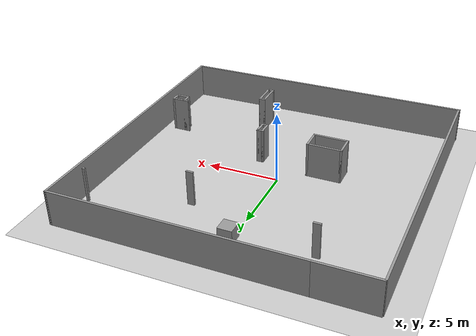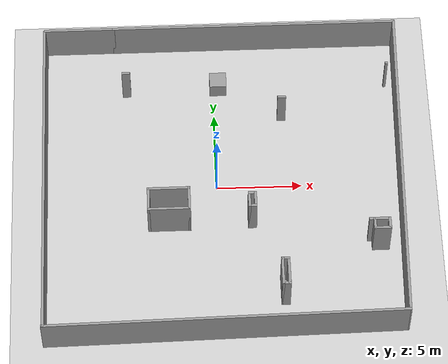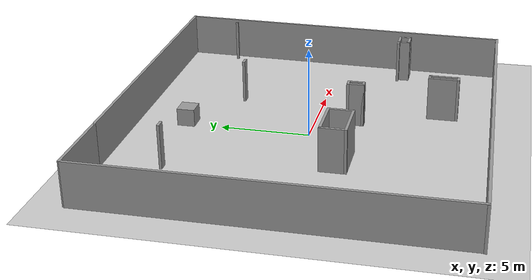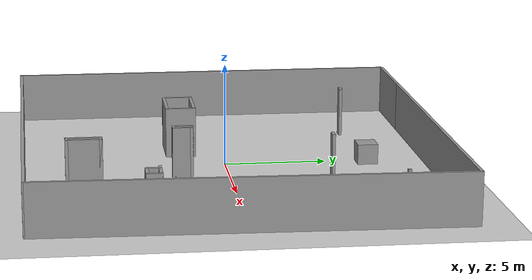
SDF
<sdf version="1.7">
 <world name="default">
  <light name="sun" type="directional">
   <pose>0 0 10 0 -0 0</pose>
   <diffuse>0.8 0.8 0.8 1</diffuse>
   <specular>0.2 0.2 0.2 1</specular>
   <attenuation>
    <range>1000</range>
    <constant>0.9</constant>
    <linear>0.01</linear>
    <quadratic>0.001</quadratic>
   </attenuation>
   <direction>-0.5 0.1 -0.9</direction>
   <spot><inner_angle>0</inner_angle><outer_angle>0</outer_angle><falloff>0</falloff></spot>
  </light>
  <model name="ground_plane">
   <static>1</static>
   <link name="link">
    <collision name="collision">
     <geometry><plane><normal>0 0 1</normal><size>100 100</size></plane></geometry>
     <surface>
      <contact><collide_bitmask>65535</collide_bitmask></contact>
      <friction><ode><mu>100</mu><mu2>50</mu2></ode></friction>
     </surface>
    </collision>
    <visual name="visual">
     <cast_shadows>0</cast_shadows>
     <geometry><plane><normal>0 0 1</normal><size>100 100</size></plane></geometry>
     <material>
      <script><uri>file://media/materials/scripts/gazebo.material</uri><name>Gazebo/Grey</name></script>
     </material>
    </visual>
   </link>
  </model>
  <gravity>0 0 -9.8</gravity>
  <magnetic_field>6e-06 2.3e-05 -4.2e-05</magnetic_field>
  <atmosphere type="adiabatic"/>
  <physics type="ode">
   <max_step_size>0.001</max_step_size>
   <real_time_factor>1</real_time_factor>
   <real_time_update_rate>1000</real_time_update_rate>
  </physics>
  <scene><ambient>0.4 0.4 0.4 1</ambient><background>0.7 0.7 0.7 1</background><shadows>1</shadows></scene>
  <spherical_coordinates>
   <surface_model>EARTH_WGS84</surface_model>
   <latitude_deg>0</latitude_deg>
   <longitude_deg>0</longitude_deg>
   <elevation>0</elevation>
   <heading_deg>0</heading_deg>
  </spherical_coordinates>
  <model name="Untitled">
   <pose>0.4511 -0.062671 0 0 -0 0</pose>
   <link name="Wall_10">
    <collision name="Wall_10_Collision">
     <geometry><box><size>19.7734 0.15 2.5</size></box></geometry>
     <pose>0 0 1.25 0 -0 0</pose>
    </collision>
    <visual name="Wall_10_Visual">
     <pose>0 0 1.25 0 -0 0</pose>
     <geometry><box><size>19.7734 0.15 2.5</size></box></geometry>
     <material>
      <script><uri>file://media/materials/scripts/gazebo.material</uri><name>Gazebo/Grey</name></script>
      <ambient>1 1 1 1</ambient>
     </material>
     <meta><layer>0</layer></meta>
    </visual>
    <pose>10.3034 0.181798 0 0 -0 -1.59534</pose>
   </link>
   <link name="Wall_11">
    <collision name="Wall_11_Collision">
     <geometry><box><size>20.7605 0.15 2.5</size></box></geometry>
     <pose>0 0 1.25 0 -0 0</pose>
    </collision>
    <visual name="Wall_11_Visual">
     <pose>0 0 1.25 0 -0 0</pose>
     <geometry><box><size>20.7605 0.15 2.5</size></box></geometry>
     <material>
      <script><uri>file://media/materials/scripts/gazebo.material</uri><name>Gazebo/Grey</name></script>
      <ambient>1 1 1 1</ambient>
     </material>
     <meta><layer>0</layer></meta>
    </visual>
    <pose>-0.241012 -9.80901 0 0 -0 -3.12393</pose>
   </link>
   <link name="Wall_12">
    <collision name="Wall_12_Collision">
     <geometry><box><size>20 0.15 2.5</size></box></geometry>
     <pose>0 0 1.25 0 -0 0</pose>
    </collision>
    <visual name="Wall_12_Visual">
     <pose>0 0 1.25 0 -0 0</pose>
     <geometry><box><size>20 0.15 2.5</size></box></geometry>
     <material>
      <script><uri>file://media/materials/scripts/gazebo.material</uri><name>Gazebo/Grey</name></script>
      <ambient>1 1 1 1</ambient>
     </material>
     <meta><layer>0</layer></meta>
    </visual>
    <pose>-10.5042 -0.025603 0 0 -0 1.5708</pose>
   </link>
   <link name="Wall_15">
    <collision name="Wall_15_Collision">
     <geometry><box><size>4.25 0.15 2.5</size></box></geometry>
     <pose>0 0 1.25 0 -0 0</pose>
    </collision>
    <visual name="Wall_15_Visual">
     <pose>0 0 1.25 0 -0 0</pose>
     <geometry><box><size>4.25 0.15 2.5</size></box></geometry>
     <material>
      <script><uri>file://media/materials/scripts/gazebo.material</uri><name>Gazebo/Grey</name></script>
      <ambient>1 1 1 1</ambient>
     </material>
     <meta><layer>0</layer></meta>
    </visual>
    <pose>-8.40936 9.99055 0 0 -0 3.14159</pose>
   </link>
   <link name="Wall_9">
    <collision name="Wall_9_Collision">
     <geometry><box><size>17 0.15 2.5</size></box></geometry>
     <pose>0 0 1.25 0 -0 0</pose>
    </collision>
    <visual name="Wall_9_Visual">
     <pose>0 0 1.25 0 -0 0</pose>
     <geometry><box><size>17 0.15 2.5</size></box></geometry>
     <material>
      <script><uri>file://media/materials/scripts/gazebo.material</uri><name>Gazebo/Grey</name></script>
      <ambient>1 1 1 1</ambient>
     </material>
     <meta><layer>0</layer></meta>
    </visual>
    <pose>2.06564 9.99055 0 0 -0 0</pose>
   </link>
   <static>1</static>
  </model>
  <model name="unit_box_1">
   <link name="link">
    <inertial>
     <mass>100</mass>
     <inertia><ixx>16.6667</ixx><ixy>0</ixy><ixz>0</ixz><iyy>16.6667</iyy><iyz>0</iyz><izz>16.6667</izz></inertia>
    </inertial>
    <visual name="visual">
     <geometry><box><size>1 1 1</size></box></geometry>
     <material>
      <script><name>Gazebo/Grey</name><uri>file://media/materials/scripts/gazebo.material</uri></script>
      <shader type="pixel"><normal_map>__default__</normal_map></shader>
     </material>
    </visual>
    <collision name="collision">
     <geometry><box><size>1 1 1</size></box></geometry>
     <surface>
      <friction>
       <ode><mu>1</mu><mu2>1</mu2><fdir1>0 0 0</fdir1><slip1>0</slip1><slip2>0</slip2></ode>
       <torsional>
        <coefficient>1</coefficient>
        <patch_radius>0</patch_radius>
        <surface_radius>0</surface_radius>
        <use_patch_radius>1</use_patch_radius>
        <ode><slip>0</slip></ode>
       </torsional>
      </friction>
      <bounce><restitution_coefficient>0</restitution_coefficient><threshold>1e+06</threshold></bounce>
      <contact>
       <collide_without_contact>0</collide_without_contact>
       <collide_without_contact_bitmask>1</collide_without_contact_bitmask>
       <collide_bitmask>1</collide_bitmask>
       <ode>
        <soft_cfm>0</soft_cfm>
        <soft_erp>0.2</soft_erp>
        <kp>1e+13</kp>
        <kd>1</kd>
        <max_vel>0.01</max_vel>
        <min_depth>0</min_depth>
       </ode>
       <bullet>
        <split_impulse>1</split_impulse>
        <split_impulse_penetration_threshold>-0.01</split_impulse_penetration_threshold>
        <soft_cfm>0</soft_cfm>
        <soft_erp>0.2</soft_erp>
        <kp>1e+13</kp>
        <kd>1</kd>
       </bullet>
      </contact>
     </surface>
    </collision>
   </link>
   <static>0</static>
   <pose>0.28615 7.03049 0.5 0 -0 0</pose>
  </model>
  <model name="Untitled_0">
   <link name="Wall_0">
    <pose>-6.00944 -2.13206 0 0 -0 0</pose>
    <visual name="Wall_0_Visual">
     <pose>0 0 1.25 0 -0 0</pose>
     <geometry><box><size>2.5 0.15 2.5</size></box></geometry>
     <material>
      <script><uri>file://media/materials/scripts/gazebo.material</uri><name>Gazebo/Grey</name></script>
      <ambient>1 1 1 1</ambient>
      <shader type="pixel"/>
     </material>
     <meta><layer>0</layer></meta>
    </visual>
    <collision name="Wall_0_Collision">
     <pose>0 0 1.25 0 -0 0</pose>
     <geometry><box><size>2.5 0.15 2.5</size></box></geometry>
     <surface>
      <friction>
       <ode><mu>1</mu><mu2>1</mu2><fdir1>0 0 0</fdir1><slip1>0</slip1><slip2>0</slip2></ode>
       <torsional>
        <coefficient>1</coefficient>
        <patch_radius>0</patch_radius>
        <surface_radius>0</surface_radius>
        <use_patch_radius>1</use_patch_radius>
        <ode><slip>0</slip></ode>
       </torsional>
      </friction>
      <bounce><restitution_coefficient>0</restitution_coefficient><threshold>1e+06</threshold></bounce>
      <contact>
       <collide_without_contact>0</collide_without_contact>
       <collide_without_contact_bitmask>1</collide_without_contact_bitmask>
       <collide_bitmask>1</collide_bitmask>
       <ode>
        <soft_cfm>0</soft_cfm>
        <soft_erp>0.2</soft_erp>
        <kp>1e+13</kp>
        <kd>1</kd>
        <max_vel>0.01</max_vel>
        <min_depth>0</min_depth>
       </ode>
       <bullet>
        <split_impulse>1</split_impulse>
        <split_impulse_penetration_threshold>-0.01</split_impulse_penetration_threshold>
        <soft_cfm>0</soft_cfm>
        <soft_erp>0.2</soft_erp>
        <kp>1e+13</kp>
        <kd>1</kd>
       </bullet>
      </contact>
     </surface>
    </collision>
   </link>
   <link name="Wall_1">
    <pose>-4.83444 -2.80706 0 0 0 -1.5708</pose>
    <visual name="Wall_1_Visual">
     <pose>0 0 1.25 0 -0 0</pose>
     <geometry><box><size>1.5 0.15 2.5</size></box></geometry>
     <material>
      <script><uri>file://media/materials/scripts/gazebo.material</uri><name>Gazebo/Grey</name></script>
      <ambient>1 1 1 1</ambient>
      <shader type="pixel"/>
     </material>
     <meta><layer>0</layer></meta>
    </visual>
    <collision name="Wall_1_Collision">
     <pose>0 0 1.25 0 -0 0</pose>
     <geometry><box><size>1.5 0.15 2.5</size></box></geometry>
     <surface>
      <friction>
       <ode><mu>1</mu><mu2>1</mu2><fdir1>0 0 0</fdir1><slip1>0</slip1><slip2>0</slip2></ode>
       <torsional>
        <coefficient>1</coefficient>
        <patch_radius>0</patch_radius>
        <surface_radius>0</surface_radius>
        <use_patch_radius>1</use_patch_radius>
        <ode><slip>0</slip></ode>
       </torsional>
      </friction>
      <bounce><restitution_coefficient>0</restitution_coefficient><threshold>1e+06</threshold></bounce>
      <contact>
       <collide_without_contact>0</collide_without_contact>
       <collide_without_contact_bitmask>1</collide_without_contact_bitmask>
       <collide_bitmask>1</collide_bitmask>
       <ode>
        <soft_cfm>0</soft_cfm>
        <soft_erp>0.2</soft_erp>
        <kp>1e+13</kp>
        <kd>1</kd>
        <max_vel>0.01</max_vel>
        <min_depth>0</min_depth>
       </ode>
       <bullet>
        <split_impulse>1</split_impulse>
        <split_impulse_penetration_threshold>-0.01</split_impulse_penetration_threshold>
        <soft_cfm>0</soft_cfm>
        <soft_erp>0.2</soft_erp>
        <kp>1e+13</kp>
        <kd>1</kd>
       </bullet>
      </contact>
     </surface>
    </collision>
   </link>
   <link name="Wall_12">
    <pose>0.339457 -7.76774 0 0 -0 1.5708</pose>
    <visual name="Wall_12_Visual">
     <pose>0 0 1.25 0 -0 0</pose>
     <geometry><box><size>1.75 0.15 2.5</size></box></geometry>
     <material>
      <script><uri>file://media/materials/scripts/gazebo.material</uri><name>Gazebo/Grey</name></script>
      <ambient>1 1 1 1</ambient>
      <shader type="pixel"/>
     </material>
     <meta><layer>0</layer></meta>
    </visual>
    <collision name="Wall_12_Collision">
     <pose>0 0 1.25 0 -0 0</pose>
     <geometry><box><size>1.75 0.15 2.5</size></box></geometry>
     <surface>
      <friction>
       <ode><mu>1</mu><mu2>1</mu2><fdir1>0 0 0</fdir1><slip1>0</slip1><slip2>0</slip2></ode>
       <torsional>
        <coefficient>1</coefficient>
        <patch_radius>0</patch_radius>
        <surface_radius>0</surface_radius>
        <use_patch_radius>1</use_patch_radius>
        <ode><slip>0</slip></ode>
       </torsional>
      </friction>
      <bounce><restitution_coefficient>0</restitution_coefficient><threshold>1e+06</threshold></bounce>
      <contact>
       <collide_without_contact>0</collide_without_contact>
       <collide_without_contact_bitmask>1</collide_without_contact_bitmask>
       <collide_bitmask>1</collide_bitmask>
       <ode>
        <soft_cfm>0</soft_cfm>
        <soft_erp>0.2</soft_erp>
        <kp>1e+13</kp>
        <kd>1</kd>
        <max_vel>0.01</max_vel>
        <min_depth>0</min_depth>
       </ode>
       <bullet>
        <split_impulse>1</split_impulse>
        <split_impulse_penetration_threshold>-0.01</split_impulse_penetration_threshold>
        <soft_cfm>0</soft_cfm>
        <soft_erp>0.2</soft_erp>
        <kp>1e+13</kp>
        <kd>1</kd>
       </bullet>
      </contact>
     </surface>
    </collision>
   </link>
   <link name="Wall_13">
    <pose>0.514457 -6.96774 0 0 -0 0</pose>
    <visual name="Wall_13_Visual">
     <pose>0 0 1.25 0 -0 0</pose>
     <geometry><box><size>0.5 0.15 2.5</size></box></geometry>
     <material>
      <script><uri>file://media/materials/scripts/gazebo.material</uri><name>Gazebo/Grey</name></script>
      <ambient>1 1 1 1</ambient>
      <shader type="pixel"/>
     </material>
     <meta><layer>0</layer></meta>
    </visual>
    <collision name="Wall_13_Collision">
     <pose>0 0 1.25 0 -0 0</pose>
     <geometry><box><size>0.5 0.15 2.5</size></box></geometry>
     <surface>
      <friction>
       <ode><mu>1</mu><mu2>1</mu2><fdir1>0 0 0</fdir1><slip1>0</slip1><slip2>0</slip2></ode>
       <torsional>
        <coefficient>1</coefficient>
        <patch_radius>0</patch_radius>
        <surface_radius>0</surface_radius>
        <use_patch_radius>1</use_patch_radius>
        <ode><slip>0</slip></ode>
       </torsional>
      </friction>
      <bounce><restitution_coefficient>0</restitution_coefficient><threshold>1e+06</threshold></bounce>
      <contact>
       <collide_without_contact>0</collide_without_contact>
       <collide_without_contact_bitmask>1</collide_without_contact_bitmask>
       <collide_bitmask>1</collide_bitmask>
       <ode>
        <soft_cfm>0</soft_cfm>
        <soft_erp>0.2</soft_erp>
        <kp>1e+13</kp>
        <kd>1</kd>
        <max_vel>0.01</max_vel>
        <min_depth>0</min_depth>
       </ode>
       <bullet>
        <split_impulse>1</split_impulse>
        <split_impulse_penetration_threshold>-0.01</split_impulse_penetration_threshold>
        <soft_cfm>0</soft_cfm>
        <soft_erp>0.2</soft_erp>
        <kp>1e+13</kp>
        <kd>1</kd>
       </bullet>
      </contact>
     </surface>
    </collision>
   </link>
   <link name="Wall_14">
    <pose>0.689456 -7.76774 0 0 0 -1.5708</pose>
    <visual name="Wall_14_Visual">
     <pose>0 0 1.25 0 -0 0</pose>
     <geometry><box><size>1.75 0.15 2.5</size></box></geometry>
     <material>
      <script><uri>file://media/materials/scripts/gazebo.material</uri><name>Gazebo/Grey</name></script>
      <ambient>1 1 1 1</ambient>
      <shader type="pixel"/>
     </material>
     <meta><layer>0</layer></meta>
    </visual>
    <collision name="Wall_14_Collision">
     <pose>0 0 1.25 0 -0 0</pose>
     <geometry><box><size>1.75 0.15 2.5</size></box></geometry>
     <surface>
      <friction>
       <ode><mu>1</mu><mu2>1</mu2><fdir1>0 0 0</fdir1><slip1>0</slip1><slip2>0</slip2></ode>
       <torsional>
        <coefficient>1</coefficient>
        <patch_radius>0</patch_radius>
        <surface_radius>0</surface_radius>
        <use_patch_radius>1</use_patch_radius>
        <ode><slip>0</slip></ode>
       </torsional>
      </friction>
      <bounce><restitution_coefficient>0</restitution_coefficient><threshold>1e+06</threshold></bounce>
      <contact>
       <collide_without_contact>0</collide_without_contact>
       <collide_without_contact_bitmask>1</collide_without_contact_bitmask>
       <collide_bitmask>1</collide_bitmask>
       <ode>
        <soft_cfm>0</soft_cfm>
        <soft_erp>0.2</soft_erp>
        <kp>1e+13</kp>
        <kd>1</kd>
        <max_vel>0.01</max_vel>
        <min_depth>0</min_depth>
       </ode>
       <bullet>
        <split_impulse>1</split_impulse>
        <split_impulse_penetration_threshold>-0.01</split_impulse_penetration_threshold>
        <soft_cfm>0</soft_cfm>
        <soft_erp>0.2</soft_erp>
        <kp>1e+13</kp>
        <kd>1</kd>
       </bullet>
      </contact>
     </surface>
    </collision>
   </link>
   <link name="Wall_15">
    <pose>0.514457 -8.56774 0 0 -0 3.14159</pose>
    <visual name="Wall_15_Visual">
     <pose>0 0 1.25 0 -0 0</pose>
     <geometry><box><size>0.5 0.15 2.5</size></box></geometry>
     <material>
      <script><uri>file://media/materials/scripts/gazebo.material</uri><name>Gazebo/Grey</name></script>
      <ambient>1 1 1 1</ambient>
      <shader type="pixel"/>
     </material>
     <meta><layer>0</layer></meta>
    </visual>
    <collision name="Wall_15_Collision">
     <pose>0 0 1.25 0 -0 0</pose>
     <geometry><box><size>0.5 0.15 2.5</size></box></geometry>
     <surface>
      <friction>
       <ode><mu>1</mu><mu2>1</mu2><fdir1>0 0 0</fdir1><slip1>0</slip1><slip2>0</slip2></ode>
       <torsional>
        <coefficient>1</coefficient>
        <patch_radius>0</patch_radius>
        <surface_radius>0</surface_radius>
        <use_patch_radius>1</use_patch_radius>
        <ode><slip>0</slip></ode>
       </torsional>
      </friction>
      <bounce><restitution_coefficient>0</restitution_coefficient><threshold>1e+06</threshold></bounce>
      <contact>
       <collide_without_contact>0</collide_without_contact>
       <collide_without_contact_bitmask>1</collide_without_contact_bitmask>
       <collide_bitmask>1</collide_bitmask>
       <ode>
        <soft_cfm>0</soft_cfm>
        <soft_erp>0.2</soft_erp>
        <kp>1e+13</kp>
        <kd>1</kd>
        <max_vel>0.01</max_vel>
        <min_depth>0</min_depth>
       </ode>
       <bullet>
        <split_impulse>1</split_impulse>
        <split_impulse_penetration_threshold>-0.01</split_impulse_penetration_threshold>
        <soft_cfm>0</soft_cfm>
        <soft_erp>0.2</soft_erp>
        <kp>1e+13</kp>
        <kd>1</kd>
       </bullet>
      </contact>
     </surface>
    </collision>
   </link>
   <link name="Wall_2">
    <pose>-6.00944 -3.48206 0 0 -0 3.14159</pose>
    <visual name="Wall_2_Visual">
     <pose>0 0 1.25 0 -0 0</pose>
     <geometry><box><size>2.5 0.15 2.5</size></box></geometry>
     <material>
      <script><uri>file://media/materials/scripts/gazebo.material</uri><name>Gazebo/Grey</name></script>
      <ambient>1 1 1 1</ambient>
      <shader type="pixel"/>
     </material>
     <meta><layer>0</layer></meta>
    </visual>
    <collision name="Wall_2_Collision">
     <pose>0 0 1.25 0 -0 0</pose>
     <geometry><box><size>2.5 0.15 2.5</size></box></geometry>
     <surface>
      <friction>
       <ode><mu>1</mu><mu2>1</mu2><fdir1>0 0 0</fdir1><slip1>0</slip1><slip2>0</slip2></ode>
       <torsional>
        <coefficient>1</coefficient>
        <patch_radius>0</patch_radius>
        <surface_radius>0</surface_radius>
        <use_patch_radius>1</use_patch_radius>
        <ode><slip>0</slip></ode>
       </torsional>
      </friction>
      <bounce><restitution_coefficient>0</restitution_coefficient><threshold>1e+06</threshold></bounce>
      <contact>
       <collide_without_contact>0</collide_without_contact>
       <collide_without_contact_bitmask>1</collide_without_contact_bitmask>
       <collide_bitmask>1</collide_bitmask>
       <ode>
        <soft_cfm>0</soft_cfm>
        <soft_erp>0.2</soft_erp>
        <kp>1e+13</kp>
        <kd>1</kd>
        <max_vel>0.01</max_vel>
        <min_depth>0</min_depth>
       </ode>
       <bullet>
        <split_impulse>1</split_impulse>
        <split_impulse_penetration_threshold>-0.01</split_impulse_penetration_threshold>
        <soft_cfm>0</soft_cfm>
        <soft_erp>0.2</soft_erp>
        <kp>1e+13</kp>
        <kd>1</kd>
       </bullet>
      </contact>
     </surface>
    </collision>
   </link>
   <link name="Wall_21">
    <pose>5.75202 -4.86614 0 0 0 -1.5708</pose>
    <visual name="Wall_21_Visual">
     <pose>0 0 1.25 0 -0 0</pose>
     <geometry><box><size>0.75 0.15 2.5</size></box></geometry>
     <material>
      <script><uri>file://media/materials/scripts/gazebo.material</uri><name>Gazebo/Grey</name></script>
      <ambient>1 1 1 1</ambient>
      <shader type="pixel"/>
     </material>
     <meta><layer>0</layer></meta>
    </visual>
    <collision name="Wall_21_Collision">
     <pose>0 0 1.25 0 -0 0</pose>
     <geometry><box><size>0.75 0.15 2.5</size></box></geometry>
     <surface>
      <friction>
       <ode><mu>1</mu><mu2>1</mu2><fdir1>0 0 0</fdir1><slip1>0</slip1><slip2>0</slip2></ode>
       <torsional>
        <coefficient>1</coefficient>
        <patch_radius>0</patch_radius>
        <surface_radius>0</surface_radius>
        <use_patch_radius>1</use_patch_radius>
        <ode><slip>0</slip></ode>
       </torsional>
      </friction>
      <bounce><restitution_coefficient>0</restitution_coefficient><threshold>1e+06</threshold></bounce>
      <contact>
       <collide_without_contact>0</collide_without_contact>
       <collide_without_contact_bitmask>1</collide_without_contact_bitmask>
       <collide_bitmask>1</collide_bitmask>
       <ode>
        <soft_cfm>0</soft_cfm>
        <soft_erp>0.2</soft_erp>
        <kp>1e+13</kp>
        <kd>1</kd>
        <max_vel>0.01</max_vel>
        <min_depth>0</min_depth>
       </ode>
       <bullet>
        <split_impulse>1</split_impulse>
        <split_impulse_penetration_threshold>-0.01</split_impulse_penetration_threshold>
        <soft_cfm>0</soft_cfm>
        <soft_erp>0.2</soft_erp>
        <kp>1e+13</kp>
        <kd>1</kd>
       </bullet>
      </contact>
     </surface>
    </collision>
   </link>
   <link name="Wall_22">
    <pose>6.17702 -5.16614 0 0 -0 0</pose>
    <visual name="Wall_22_Visual">
     <pose>0 0 1.25 0 -0 0</pose>
     <geometry><box><size>1 0.15 2.5</size></box></geometry>
     <material>
      <script><uri>file://media/materials/scripts/gazebo.material</uri><name>Gazebo/Grey</name></script>
      <ambient>1 1 1 1</ambient>
      <shader type="pixel"/>
     </material>
     <meta><layer>0</layer></meta>
    </visual>
    <collision name="Wall_22_Collision">
     <pose>0 0 1.25 0 -0 0</pose>
     <geometry><box><size>1 0.15 2.5</size></box></geometry>
     <surface>
      <friction>
       <ode><mu>1</mu><mu2>1</mu2><fdir1>0 0 0</fdir1><slip1>0</slip1><slip2>0</slip2></ode>
       <torsional>
        <coefficient>1</coefficient>
        <patch_radius>0</patch_radius>
        <surface_radius>0</surface_radius>
        <use_patch_radius>1</use_patch_radius>
        <ode><slip>0</slip></ode>
       </torsional>
      </friction>
      <bounce><restitution_coefficient>0</restitution_coefficient><threshold>1e+06</threshold></bounce>
      <contact>
       <collide_without_contact>0</collide_without_contact>
       <collide_without_contact_bitmask>1</collide_without_contact_bitmask>
       <collide_bitmask>1</collide_bitmask>
       <ode>
        <soft_cfm>0</soft_cfm>
        <soft_erp>0.2</soft_erp>
        <kp>1e+13</kp>
        <kd>1</kd>
        <max_vel>0.01</max_vel>
        <min_depth>0</min_depth>
       </ode>
       <bullet>
        <split_impulse>1</split_impulse>
        <split_impulse_penetration_threshold>-0.01</split_impulse_penetration_threshold>
        <soft_cfm>0</soft_cfm>
        <soft_erp>0.2</soft_erp>
        <kp>1e+13</kp>
        <kd>1</kd>
       </bullet>
      </contact>
     </surface>
    </collision>
   </link>
   <link name="Wall_23">
    <pose>6.60202 -4.86614 0 0 -0 1.5708</pose>
    <visual name="Wall_23_Visual">
     <pose>0 0 1.25 0 -0 0</pose>
     <geometry><box><size>0.75 0.15 2.5</size></box></geometry>
     <material>
      <script><uri>file://media/materials/scripts/gazebo.material</uri><name>Gazebo/Grey</name></script>
      <ambient>1 1 1 1</ambient>
      <shader type="pixel"/>
     </material>
     <meta><layer>0</layer></meta>
    </visual>
    <collision name="Wall_23_Collision">
     <pose>0 0 1.25 0 -0 0</pose>
     <geometry><box><size>0.75 0.15 2.5</size></box></geometry>
     <surface>
      <friction>
       <ode><mu>1</mu><mu2>1</mu2><fdir1>0 0 0</fdir1><slip1>0</slip1><slip2>0</slip2></ode>
       <torsional>
        <coefficient>1</coefficient>
        <patch_radius>0</patch_radius>
        <surface_radius>0</surface_radius>
        <use_patch_radius>1</use_patch_radius>
        <ode><slip>0</slip></ode>
       </torsional>
      </friction>
      <bounce><restitution_coefficient>0</restitution_coefficient><threshold>1e+06</threshold></bounce>
      <contact>
       <collide_without_contact>0</collide_without_contact>
       <collide_without_contact_bitmask>1</collide_without_contact_bitmask>
       <collide_bitmask>1</collide_bitmask>
       <ode>
        <soft_cfm>0</soft_cfm>
        <soft_erp>0.2</soft_erp>
        <kp>1e+13</kp>
        <kd>1</kd>
        <max_vel>0.01</max_vel>
        <min_depth>0</min_depth>
       </ode>
       <bullet>
        <split_impulse>1</split_impulse>
        <split_impulse_penetration_threshold>-0.01</split_impulse_penetration_threshold>
        <soft_cfm>0</soft_cfm>
        <soft_erp>0.2</soft_erp>
        <kp>1e+13</kp>
        <kd>1</kd>
       </bullet>
      </contact>
     </surface>
    </collision>
   </link>
   <link name="Wall_24">
    <pose>6.05202 -4.56614 0 0 -0 3.14159</pose>
    <visual name="Wall_24_Visual">
     <pose>0 0 1.25 0 -0 0</pose>
     <geometry><box><size>1.25 0.15 2.5</size></box></geometry>
     <material>
      <script><uri>file://media/materials/scripts/gazebo.material</uri><name>Gazebo/Grey</name></script>
      <ambient>1 1 1 1</ambient>
      <shader type="pixel"/>
     </material>
     <meta><layer>0</layer></meta>
    </visual>
    <collision name="Wall_24_Collision">
     <pose>0 0 1.25 0 -0 0</pose>
     <geometry><box><size>1.25 0.15 2.5</size></box></geometry>
     <surface>
      <friction>
       <ode><mu>1</mu><mu2>1</mu2><fdir1>0 0 0</fdir1><slip1>0</slip1><slip2>0</slip2></ode>
       <torsional>
        <coefficient>1</coefficient>
        <patch_radius>0</patch_radius>
        <surface_radius>0</surface_radius>
        <use_patch_radius>1</use_patch_radius>
        <ode><slip>0</slip></ode>
       </torsional>
      </friction>
      <bounce><restitution_coefficient>0</restitution_coefficient><threshold>1e+06</threshold></bounce>
      <contact>
       <collide_without_contact>0</collide_without_contact>
       <collide_without_contact_bitmask>1</collide_without_contact_bitmask>
       <collide_bitmask>1</collide_bitmask>
       <ode>
        <soft_cfm>0</soft_cfm>
        <soft_erp>0.2</soft_erp>
        <kp>1e+13</kp>
        <kd>1</kd>
        <max_vel>0.01</max_vel>
        <min_depth>0</min_depth>
       </ode>
       <bullet>
        <split_impulse>1</split_impulse>
        <split_impulse_penetration_threshold>-0.01</split_impulse_penetration_threshold>
        <soft_cfm>0</soft_cfm>
        <soft_erp>0.2</soft_erp>
        <kp>1e+13</kp>
        <kd>1</kd>
       </bullet>
      </contact>
     </surface>
    </collision>
   </link>
   <link name="Wall_3">
    <pose>-7.18444 -2.80706 0 0 -0 1.5708</pose>
    <visual name="Wall_3_Visual">
     <pose>0 0 1.25 0 -0 0</pose>
     <geometry><box><size>1.5 0.15 2.5</size></box></geometry>
     <material>
      <script><uri>file://media/materials/scripts/gazebo.material</uri><name>Gazebo/Grey</name></script>
      <ambient>1 1 1 1</ambient>
      <shader type="pixel"/>
     </material>
     <meta><layer>0</layer></meta>
    </visual>
    <collision name="Wall_3_Collision">
     <pose>0 0 1.25 0 -0 0</pose>
     <geometry><box><size>1.5 0.15 2.5</size></box></geometry>
     <surface>
      <friction>
       <ode><mu>1</mu><mu2>1</mu2><fdir1>0 0 0</fdir1><slip1>0</slip1><slip2>0</slip2></ode>
       <torsional>
        <coefficient>1</coefficient>
        <patch_radius>0</patch_radius>
        <surface_radius>0</surface_radius>
        <use_patch_radius>1</use_patch_radius>
        <ode><slip>0</slip></ode>
       </torsional>
      </friction>
      <bounce><restitution_coefficient>0</restitution_coefficient><threshold>1e+06</threshold></bounce>
      <contact>
       <collide_without_contact>0</collide_without_contact>
       <collide_without_contact_bitmask>1</collide_without_contact_bitmask>
       <collide_bitmask>1</collide_bitmask>
       <ode>
        <soft_cfm>0</soft_cfm>
        <soft_erp>0.2</soft_erp>
        <kp>1e+13</kp>
        <kd>1</kd>
        <max_vel>0.01</max_vel>
        <min_depth>0</min_depth>
       </ode>
       <bullet>
        <split_impulse>1</split_impulse>
        <split_impulse_penetration_threshold>-0.01</split_impulse_penetration_threshold>
        <soft_cfm>0</soft_cfm>
        <soft_erp>0.2</soft_erp>
        <kp>1e+13</kp>
        <kd>1</kd>
       </bullet>
      </contact>
     </surface>
    </collision>
   </link>
   <link name="Wall_33">
    <pose>7.17944 6.13476 0 0 -0 0</pose>
    <visual name="Wall_33_Visual">
     <pose>0 0 1.25 0 -0 0</pose>
     <geometry><box><size>0.16 0.15 2.5</size></box></geometry>
     <material>
      <script><uri>file://media/materials/scripts/gazebo.material</uri><name>Gazebo/Grey</name></script>
      <ambient>1 1 1 1</ambient>
      <shader type="pixel"/>
     </material>
     <meta><layer>0</layer></meta>
    </visual>
    <collision name="Wall_33_Collision">
     <pose>0 0 1.25 0 -0 0</pose>
     <geometry><box><size>0.16 0.15 2.5</size></box></geometry>
     <surface>
      <friction>
       <ode><mu>1</mu><mu2>1</mu2><fdir1>0 0 0</fdir1><slip1>0</slip1><slip2>0</slip2></ode>
       <torsional>
        <coefficient>1</coefficient>
        <patch_radius>0</patch_radius>
        <surface_radius>0</surface_radius>
        <use_patch_radius>1</use_patch_radius>
        <ode><slip>0</slip></ode>
       </torsional>
      </friction>
      <bounce><restitution_coefficient>0</restitution_coefficient><threshold>1e+06</threshold></bounce>
      <contact>
       <collide_without_contact>0</collide_without_contact>
       <collide_without_contact_bitmask>1</collide_without_contact_bitmask>
       <collide_bitmask>1</collide_bitmask>
       <ode>
        <soft_cfm>0</soft_cfm>
        <soft_erp>0.2</soft_erp>
        <kp>1e+13</kp>
        <kd>1</kd>
        <max_vel>0.01</max_vel>
        <min_depth>0</min_depth>
       </ode>
       <bullet>
        <split_impulse>1</split_impulse>
        <split_impulse_penetration_threshold>-0.01</split_impulse_penetration_threshold>
        <soft_cfm>0</soft_cfm>
        <soft_erp>0.2</soft_erp>
        <kp>1e+13</kp>
        <kd>1</kd>
       </bullet>
      </contact>
     </surface>
    </collision>
   </link>
   <link name="Wall_5">
    <pose>-1.36444 -3.01706 0 0 0 -1.5708</pose>
    <visual name="Wall_5_Visual">
     <pose>0 0 1.25 0 -0 0</pose>
     <geometry><box><size>1 0.15 2.5</size></box></geometry>
     <material>
      <script><uri>file://media/materials/scripts/gazebo.material</uri><name>Gazebo/Grey</name></script>
      <ambient>1 1 1 1</ambient>
      <shader type="pixel"/>
     </material>
     <meta><layer>0</layer></meta>
    </visual>
    <collision name="Wall_5_Collision">
     <pose>0 0 1.25 0 -0 0</pose>
     <geometry><box><size>1 0.15 2.5</size></box></geometry>
     <surface>
      <friction>
       <ode><mu>1</mu><mu2>1</mu2><fdir1>0 0 0</fdir1><slip1>0</slip1><slip2>0</slip2></ode>
       <torsional>
        <coefficient>1</coefficient>
        <patch_radius>0</patch_radius>
        <surface_radius>0</surface_radius>
        <use_patch_radius>1</use_patch_radius>
        <ode><slip>0</slip></ode>
       </torsional>
      </friction>
      <bounce><restitution_coefficient>0</restitution_coefficient><threshold>1e+06</threshold></bounce>
      <contact>
       <collide_without_contact>0</collide_without_contact>
       <collide_without_contact_bitmask>1</collide_without_contact_bitmask>
       <collide_bitmask>1</collide_bitmask>
       <ode>
        <soft_cfm>0</soft_cfm>
        <soft_erp>0.2</soft_erp>
        <kp>1e+13</kp>
        <kd>1</kd>
        <max_vel>0.01</max_vel>
        <min_depth>0</min_depth>
       </ode>
       <bullet>
        <split_impulse>1</split_impulse>
        <split_impulse_penetration_threshold>-0.01</split_impulse_penetration_threshold>
        <soft_cfm>0</soft_cfm>
        <soft_erp>0.2</soft_erp>
        <kp>1e+13</kp>
        <kd>1</kd>
       </bullet>
      </contact>
     </surface>
    </collision>
   </link>
   <link name="Wall_6">
    <pose>-1.18944 -3.44206 0 0 -0 0</pose>
    <visual name="Wall_6_Visual">
     <pose>0 0 1.25 0 -0 0</pose>
     <geometry><box><size>0.5 0.15 2.5</size></box></geometry>
     <material>
      <script><uri>file://media/materials/scripts/gazebo.material</uri><name>Gazebo/Grey</name></script>
      <ambient>1 1 1 1</ambient>
      <shader type="pixel"/>
     </material>
     <meta><layer>0</layer></meta>
    </visual>
    <collision name="Wall_6_Collision">
     <pose>0 0 1.25 0 -0 0</pose>
     <geometry><box><size>0.5 0.15 2.5</size></box></geometry>
     <surface>
      <friction>
       <ode><mu>1</mu><mu2>1</mu2><fdir1>0 0 0</fdir1><slip1>0</slip1><slip2>0</slip2></ode>
       <torsional>
        <coefficient>1</coefficient>
        <patch_radius>0</patch_radius>
        <surface_radius>0</surface_radius>
        <use_patch_radius>1</use_patch_radius>
        <ode><slip>0</slip></ode>
       </torsional>
      </friction>
      <bounce><restitution_coefficient>0</restitution_coefficient><threshold>1e+06</threshold></bounce>
      <contact>
       <collide_without_contact>0</collide_without_contact>
       <collide_without_contact_bitmask>1</collide_without_contact_bitmask>
       <collide_bitmask>1</collide_bitmask>
       <ode>
        <soft_cfm>0</soft_cfm>
        <soft_erp>0.2</soft_erp>
        <kp>1e+13</kp>
        <kd>1</kd>
        <max_vel>0.01</max_vel>
        <min_depth>0</min_depth>
       </ode>
       <bullet>
        <split_impulse>1</split_impulse>
        <split_impulse_penetration_threshold>-0.01</split_impulse_penetration_threshold>
        <soft_cfm>0</soft_cfm>
        <soft_erp>0.2</soft_erp>
        <kp>1e+13</kp>
        <kd>1</kd>
       </bullet>
      </contact>
     </surface>
    </collision>
   </link>
   <link name="Wall_7">
    <pose>-1.01444 -3.01706 0 0 -0 1.5708</pose>
    <visual name="Wall_7_Visual">
     <pose>0 0 1.25 0 -0 0</pose>
     <geometry><box><size>1 0.15 2.5</size></box></geometry>
     <material>
      <script><uri>file://media/materials/scripts/gazebo.material</uri><name>Gazebo/Grey</name></script>
      <ambient>1 1 1 1</ambient>
      <shader type="pixel"/>
     </material>
     <meta><layer>0</layer></meta>
    </visual>
    <collision name="Wall_7_Collision">
     <pose>0 0 1.25 0 -0 0</pose>
     <geometry><box><size>1 0.15 2.5</size></box></geometry>
     <surface>
      <friction>
       <ode><mu>1</mu><mu2>1</mu2><fdir1>0 0 0</fdir1><slip1>0</slip1><slip2>0</slip2></ode>
       <torsional>
        <coefficient>1</coefficient>
        <patch_radius>0</patch_radius>
        <surface_radius>0</surface_radius>
        <use_patch_radius>1</use_patch_radius>
        <ode><slip>0</slip></ode>
       </torsional>
      </friction>
      <bounce><restitution_coefficient>0</restitution_coefficient><threshold>1e+06</threshold></bounce>
      <contact>
       <collide_without_contact>0</collide_without_contact>
       <collide_without_contact_bitmask>1</collide_without_contact_bitmask>
       <collide_bitmask>1</collide_bitmask>
       <ode>
        <soft_cfm>0</soft_cfm>
        <soft_erp>0.2</soft_erp>
        <kp>1e+13</kp>
        <kd>1</kd>
        <max_vel>0.01</max_vel>
        <min_depth>0</min_depth>
       </ode>
       <bullet>
        <split_impulse>1</split_impulse>
        <split_impulse_penetration_threshold>-0.01</split_impulse_penetration_threshold>
        <soft_cfm>0</soft_cfm>
        <soft_erp>0.2</soft_erp>
        <kp>1e+13</kp>
        <kd>1</kd>
       </bullet>
      </contact>
     </surface>
    </collision>
   </link>
   <link name="Wall_8">
    <pose>-1.18944 -2.59206 0 0 -0 3.14159</pose>
    <visual name="Wall_8_Visual">
     <pose>0 0 1.25 0 -0 0</pose>
     <geometry><box><size>0.5 0.15 2.5</size></box></geometry>
     <material>
      <script><uri>file://media/materials/scripts/gazebo.material</uri><name>Gazebo/Grey</name></script>
      <ambient>1 1 1 1</ambient>
      <shader type="pixel"/>
     </material>
     <meta><layer>0</layer></meta>
    </visual>
    <collision name="Wall_8_Collision">
     <pose>0 0 1.25 0 -0 0</pose>
     <geometry><box><size>0.5 0.15 2.5</size></box></geometry>
     <surface>
      <friction>
       <ode><mu>1</mu><mu2>1</mu2><fdir1>0 0 0</fdir1><slip1>0</slip1><slip2>0</slip2></ode>
       <torsional>
        <coefficient>1</coefficient>
        <patch_radius>0</patch_radius>
        <surface_radius>0</surface_radius>
        <use_patch_radius>1</use_patch_radius>
        <ode><slip>0</slip></ode>
       </torsional>
      </friction>
      <bounce><restitution_coefficient>0</restitution_coefficient><threshold>1e+06</threshold></bounce>
      <contact>
       <collide_without_contact>0</collide_without_contact>
       <collide_without_contact_bitmask>1</collide_without_contact_bitmask>
       <collide_bitmask>1</collide_bitmask>
       <ode>
        <soft_cfm>0</soft_cfm>
        <soft_erp>0.2</soft_erp>
        <kp>1e+13</kp>
        <kd>1</kd>
        <max_vel>0.01</max_vel>
        <min_depth>0</min_depth>
       </ode>
       <bullet>
        <split_impulse>1</split_impulse>
        <split_impulse_penetration_threshold>-0.01</split_impulse_penetration_threshold>
        <soft_cfm>0</soft_cfm>
        <soft_erp>0.2</soft_erp>
        <kp>1e+13</kp>
        <kd>1</kd>
       </bullet>
      </contact>
     </surface>
    </collision>
   </link>
   <link name="Wall_8_clone">
    <pose>0.820854 3.92613 0 0 -0 3.14159</pose>
    <visual name="Wall_8_Visual">
     <pose>0 0 1.25 0 -0 0</pose>
     <geometry><box><size>0.5 0.15 2.5</size></box></geometry>
     <material>
      <script><uri>file://media/materials/scripts/gazebo.material</uri><name>Gazebo/Grey</name></script>
      <ambient>1 1 1 1</ambient>
      <shader type="pixel"/>
     </material>
     <meta><layer>0</layer></meta>
    </visual>
    <collision name="Wall_8_Collision">
     <pose>0 0 1.25 0 -0 0</pose>
     <geometry><box><size>0.5 0.15 2.5</size></box></geometry>
     <surface>
      <friction>
       <ode><mu>1</mu><mu2>1</mu2><fdir1>0 0 0</fdir1><slip1>0</slip1><slip2>0</slip2></ode>
       <torsional>
        <coefficient>1</coefficient>
        <patch_radius>0</patch_radius>
        <surface_radius>0</surface_radius>
        <use_patch_radius>1</use_patch_radius>
        <ode><slip>0</slip></ode>
       </torsional>
      </friction>
      <bounce><restitution_coefficient>0</restitution_coefficient><threshold>1e+06</threshold></bounce>
      <contact>
       <collide_without_contact>0</collide_without_contact>
       <collide_without_contact_bitmask>1</collide_without_contact_bitmask>
       <collide_bitmask>1</collide_bitmask>
       <ode>
        <soft_cfm>0</soft_cfm>
        <soft_erp>0.2</soft_erp>
        <kp>1e+13</kp>
        <kd>1</kd>
        <max_vel>0.01</max_vel>
        <min_depth>0</min_depth>
       </ode>
       <bullet>
        <split_impulse>1</split_impulse>
        <split_impulse_penetration_threshold>-0.01</split_impulse_penetration_threshold>
        <soft_cfm>0</soft_cfm>
        <soft_erp>0.2</soft_erp>
        <kp>1e+13</kp>
        <kd>1</kd>
       </bullet>
      </contact>
     </surface>
    </collision>
   </link>
   <link name="Wall_8_clone_0">
    <pose>-8.37554 5.92722 0 0 -0 3.14159</pose>
    <visual name="Wall_8_Visual">
     <pose>0 0 1.25 0 -0 0</pose>
     <geometry><box><size>0.5 0.15 2.5</size></box></geometry>
     <material>
      <script><uri>file://media/materials/scripts/gazebo.material</uri><name>Gazebo/Grey</name></script>
      <ambient>1 1 1 1</ambient>
      <shader type="pixel"/>
     </material>
     <meta><layer>0</layer></meta>
    </visual>
    <collision name="Wall_8_Collision">
     <pose>0 0 1.25 0 -0 0</pose>
     <geometry><box><size>0.5 0.15 2.5</size></box></geometry>
     <surface>
      <friction>
       <ode><mu>1</mu><mu2>1</mu2><fdir1>0 0 0</fdir1><slip1>0</slip1><slip2>0</slip2></ode>
       <torsional>
        <coefficient>1</coefficient>
        <patch_radius>0</patch_radius>
        <surface_radius>0</surface_radius>
        <use_patch_radius>1</use_patch_radius>
        <ode><slip>0</slip></ode>
       </torsional>
      </friction>
      <bounce><restitution_coefficient>0</restitution_coefficient><threshold>1e+06</threshold></bounce>
      <contact>
       <collide_without_contact>0</collide_without_contact>
       <collide_without_contact_bitmask>1</collide_without_contact_bitmask>
       <collide_bitmask>1</collide_bitmask>
       <ode>
        <soft_cfm>0</soft_cfm>
        <soft_erp>0.2</soft_erp>
        <kp>1e+13</kp>
        <kd>1</kd>
        <max_vel>0.01</max_vel>
        <min_depth>0</min_depth>
       </ode>
       <bullet>
        <split_impulse>1</split_impulse>
        <split_impulse_penetration_threshold>-0.01</split_impulse_penetration_threshold>
        <soft_cfm>0</soft_cfm>
        <soft_erp>0.2</soft_erp>
        <kp>1e+13</kp>
        <kd>1</kd>
       </bullet>
      </contact>
     </surface>
    </collision>
   </link>
   <static>1</static>
   <pose>3.17444 0.762056 0 0 -0 0</pose>
  </model>
 </world>
</sdf>
